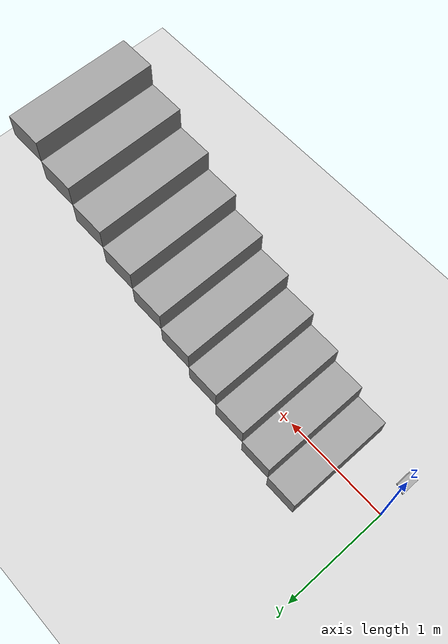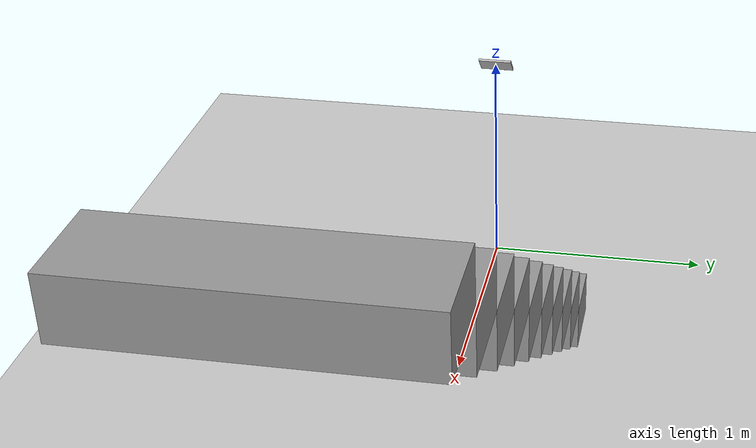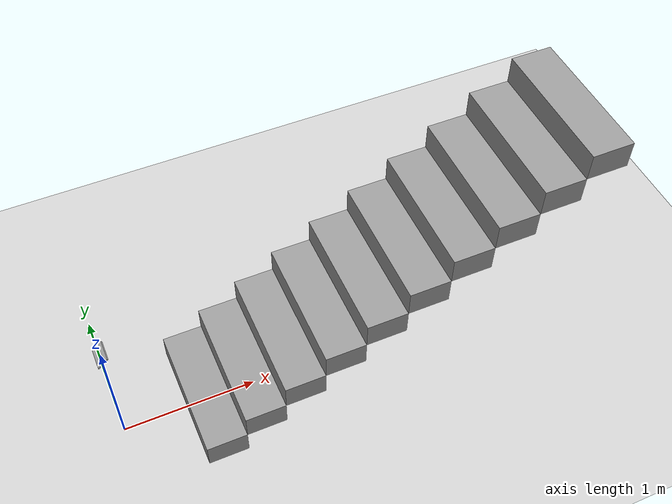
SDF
<sdf version="1.7">
 <world name="default">
  <light name="sun" type="directional">
   <pose>0 0 10 0 -0 0</pose>
   <diffuse>0.8 0.8 0.8 1</diffuse>
   <specular>0.2 0.2 0.2 1</specular>
   <attenuation>
    <range>1000</range>
    <constant>0.9</constant>
    <linear>0.01</linear>
    <quadratic>0.001</quadratic>
   </attenuation>
   <direction>-0.5 0.1 -0.9</direction>
   <spot><inner_angle>0</inner_angle><outer_angle>0</outer_angle><falloff>0</falloff></spot>
  </light>
  <model name="ground_plane">
   <static>1</static>
   <link name="link">
    <collision name="collision">
     <geometry><plane><normal>0 0 1</normal><size>100 100</size></plane></geometry>
     <surface>
      <contact><collide_bitmask>65535</collide_bitmask></contact>
      <friction><ode><mu>100</mu><mu2>50</mu2></ode></friction>
     </surface>
    </collision>
    <visual name="visual">
     <cast_shadows>0</cast_shadows>
     <geometry><plane><normal>0 0 1</normal><size>100 100</size></plane></geometry>
     <material>
      <script><uri>file://media/materials/scripts/gazebo.material</uri><name>Gazebo/Grey</name></script>
     </material>
    </visual>
   </link>
  </model>
  <gravity>0 0 -9.8</gravity>
  <magnetic_field>6e-06 2.3e-05 -4.2e-05</magnetic_field>
  <atmosphere type="adiabatic"/>
  <physics type="ode">
   <max_step_size>0.001</max_step_size>
   <real_time_factor>1</real_time_factor>
   <real_time_update_rate>1000</real_time_update_rate>
  </physics>
  <scene><ambient>0.4 0.4 0.4 1</ambient><background>0.7 0.7 0.7 1</background><shadows>1</shadows></scene>
  <spherical_coordinates>
   <surface_model>EARTH_WGS84</surface_model>
   <latitude_deg>0</latitude_deg>
   <longitude_deg>0</longitude_deg>
   <elevation>0</elevation>
   <heading_deg>0</heading_deg>
  </spherical_coordinates>
  <model name="stair1">
   <pose>1.97594 -4e-06 0 0 -0 1.5708</pose>
   <link name="Stairs_3">
    <visual name="Stairs_3_Visual_0">
     <pose>0 1.35 0.1 0 -0 0</pose>
     <geometry><box><size>1 0.3 0.2</size></box></geometry>
     <material>
      <script><uri>file://media/materials/scripts/gazebo.material</uri><name>Gazebo/Grey</name></script>
      <ambient>1 1 1 1</ambient>
     </material>
     <meta><layer>0</layer></meta>
    </visual>
    <collision name="Stairs_3_Collision_0">
     <geometry><box><size>1 0.3 0.2</size></box></geometry>
     <pose>0 1.35 0.1 0 -0 0</pose>
    </collision>
    <visual name="Stairs_3_Visual_1">
     <pose>0 1.05 0.3 0 -0 0</pose>
     <geometry><box><size>1 0.3 0.2</size></box></geometry>
     <material>
      <script><uri>file://media/materials/scripts/gazebo.material</uri><name>Gazebo/Grey</name></script>
      <ambient>1 1 1 1</ambient>
     </material>
     <meta><layer>0</layer></meta>
    </visual>
    <collision name="Stairs_3_Collision_1">
     <geometry><box><size>1 0.3 0.2</size></box></geometry>
     <pose>0 1.05 0.3 0 -0 0</pose>
    </collision>
    <visual name="Stairs_3_Visual_2">
     <pose>0 0.75 0.5 0 -0 0</pose>
     <geometry><box><size>1 0.3 0.2</size></box></geometry>
     <material>
      <script><uri>file://media/materials/scripts/gazebo.material</uri><name>Gazebo/Grey</name></script>
      <ambient>1 1 1 1</ambient>
     </material>
     <meta><layer>0</layer></meta>
    </visual>
    <collision name="Stairs_3_Collision_2">
     <geometry><box><size>1 0.3 0.2</size></box></geometry>
     <pose>0 0.75 0.5 0 -0 0</pose>
    </collision>
    <visual name="Stairs_3_Visual_3">
     <pose>0 0.45 0.7 0 -0 0</pose>
     <geometry><box><size>1 0.3 0.2</size></box></geometry>
     <material>
      <script><uri>file://media/materials/scripts/gazebo.material</uri><name>Gazebo/Grey</name></script>
      <ambient>1 1 1 1</ambient>
     </material>
     <meta><layer>0</layer></meta>
    </visual>
    <collision name="Stairs_3_Collision_3">
     <geometry><box><size>1 0.3 0.2</size></box></geometry>
     <pose>0 0.45 0.7 0 -0 0</pose>
    </collision>
    <visual name="Stairs_3_Visual_4">
     <pose>0 0.15 0.9 0 -0 0</pose>
     <geometry><box><size>1 0.3 0.2</size></box></geometry>
     <material>
      <script><uri>file://media/materials/scripts/gazebo.material</uri><name>Gazebo/Grey</name></script>
      <ambient>1 1 1 1</ambient>
     </material>
     <meta><layer>0</layer></meta>
    </visual>
    <collision name="Stairs_3_Collision_4">
     <geometry><box><size>1 0.3 0.2</size></box></geometry>
     <pose>0 0.15 0.9 0 -0 0</pose>
    </collision>
    <visual name="Stairs_3_Visual_5">
     <pose>0 -0.15 1.1 0 -0 0</pose>
     <geometry><box><size>1 0.3 0.2</size></box></geometry>
     <material>
      <script><uri>file://media/materials/scripts/gazebo.material</uri><name>Gazebo/Grey</name></script>
      <ambient>1 1 1 1</ambient>
     </material>
     <meta><layer>0</layer></meta>
    </visual>
    <collision name="Stairs_3_Collision_5">
     <geometry><box><size>1 0.3 0.2</size></box></geometry>
     <pose>0 -0.15 1.1 0 -0 0</pose>
    </collision>
    <visual name="Stairs_3_Visual_6">
     <pose>0 -0.45 1.3 0 -0 0</pose>
     <geometry><box><size>1 0.3 0.2</size></box></geometry>
     <material>
      <script><uri>file://media/materials/scripts/gazebo.material</uri><name>Gazebo/Grey</name></script>
      <ambient>1 1 1 1</ambient>
     </material>
     <meta><layer>0</layer></meta>
    </visual>
    <collision name="Stairs_3_Collision_6">
     <geometry><box><size>1 0.3 0.2</size></box></geometry>
     <pose>0 -0.45 1.3 0 -0 0</pose>
    </collision>
    <visual name="Stairs_3_Visual_7">
     <pose>0 -0.75 1.5 0 -0 0</pose>
     <geometry><box><size>1 0.3 0.2</size></box></geometry>
     <material>
      <script><uri>file://media/materials/scripts/gazebo.material</uri><name>Gazebo/Grey</name></script>
      <ambient>1 1 1 1</ambient>
     </material>
     <meta><layer>0</layer></meta>
    </visual>
    <collision name="Stairs_3_Collision_7">
     <geometry><box><size>1 0.3 0.2</size></box></geometry>
     <pose>0 -0.75 1.5 0 -0 0</pose>
    </collision>
    <visual name="Stairs_3_Visual_8">
     <pose>0 -1.05 1.7 0 -0 0</pose>
     <geometry><box><size>1 0.3 0.2</size></box></geometry>
     <material>
      <script><uri>file://media/materials/scripts/gazebo.material</uri><name>Gazebo/Grey</name></script>
      <ambient>1 1 1 1</ambient>
     </material>
     <meta><layer>0</layer></meta>
    </visual>
    <collision name="Stairs_3_Collision_8">
     <geometry><box><size>1 0.3 0.2</size></box></geometry>
     <pose>0 -1.05 1.7 0 -0 0</pose>
    </collision>
    <visual name="Stairs_3_Visual_9">
     <pose>0 -1.35 1.9 0 -0 0</pose>
     <geometry><box><size>1 0.3 0.2</size></box></geometry>
     <material>
      <script><uri>file://media/materials/scripts/gazebo.material</uri><name>Gazebo/Grey</name></script>
      <ambient>1 1 1 1</ambient>
     </material>
     <meta><layer>0</layer></meta>
    </visual>
    <collision name="Stairs_3_Collision_9">
     <geometry><box><size>1 0.3 0.2</size></box></geometry>
     <pose>0 -1.35 1.9 0 -0 0</pose>
    </collision>
   </link>
   <static>1</static>
  </model>
  <model name="mycamera">
   <link name="base_link">
    <inertial>
     <mass>6</mass>
     <inertia><ixx>2</ixx><ixy>0</ixy><ixz>0</ixz><iyy>2</iyy><iyz>0</iyz><izz>2</izz></inertia>
    </inertial>
    <collision name="base_link_collision"><geometry><sphere><radius>0.001</radius></sphere></geometry></collision>
    <collision name="base_link_fixed_joint_lump__camera_box_collision_1">
     <pose>0 0 1 0 0.7854 0</pose>
     <geometry><box><size>0.01 0.15 0.1</size></box></geometry>
    </collision>
    <visual name="base_link_visual">
     <geometry><sphere><radius>0.001</radius></sphere></geometry>
     <material>
      <script><name>Gazebo/Red</name><uri>file://media/materials/scripts/gazebo.material</uri></script>
     </material>
    </visual>
    <visual name="base_link_fixed_joint_lump__camera_box_visual_1">
     <pose>0 0 1 0 0.7854 0</pose>
     <geometry><box><size>0.01 0.15 0.1</size></box></geometry>
    </visual>
    <sensor name="camera" type="depth">
     <always_on>1</always_on>
     <update_rate>30</update_rate>
     <camera>
      <horizontal_fov>1.46608</horizontal_fov>
      <image><format>R8G8B8</format><width>1280</width><height>720</height></image>
      <clip><near>0.05</near><far>8</far></clip>
     </camera>
     <plugin name="kinect_camera_controller" filename="libgazebo_ros_openni_kinect.so">
      <cameraName>camera</cameraName>
      <alwaysOn>1</alwaysOn>
      <updateRate>10</updateRate>
      <imageTopicName>rgb/image_raw</imageTopicName>
      <depthImageTopicName>depth/image_raw</depthImageTopicName>
      <pointCloudTopicName>depth/points</pointCloudTopicName>
      <cameraInfoTopicName>rgb/camera_info</cameraInfoTopicName>
      <depthImageCameraInfoTopicName>depth/camera_info</depthImageCameraInfoTopicName>
      <frameName>camera_box_depth</frameName>
      <baseline>0.1</baseline>
      <distortion_k1>0.0</distortion_k1>
      <distortion_k2>0.0</distortion_k2>
      <distortion_k3>0.0</distortion_k3>
      <distortion_t1>0.0</distortion_t1>
      <distortion_t2>0.0</distortion_t2>
      <pointCloudCutoff>0.4</pointCloudCutoff>
      <robotNamespace>/</robotNamespace>
     </plugin>
     <pose>0 0 1 0 0.7854 0</pose>
    </sensor>
   </link>
   <pose>0 0 0.001 0 -0 0</pose>
  </model>
 </world>
</sdf>
